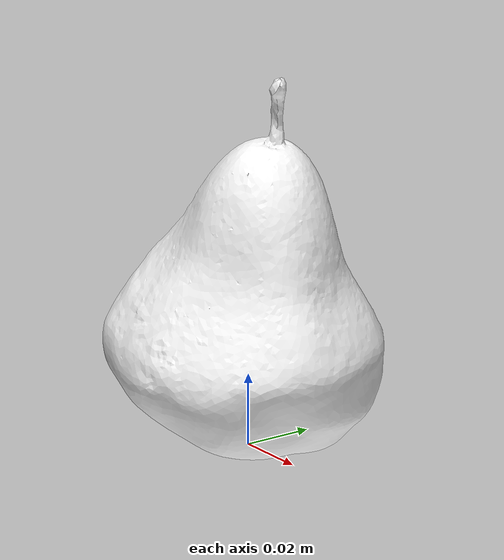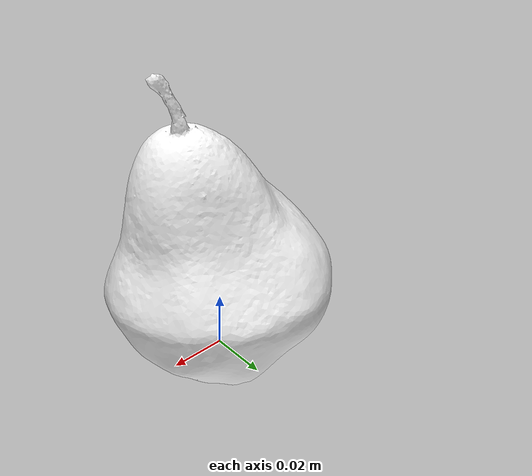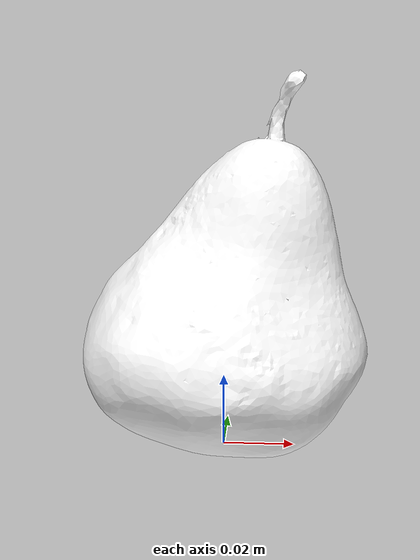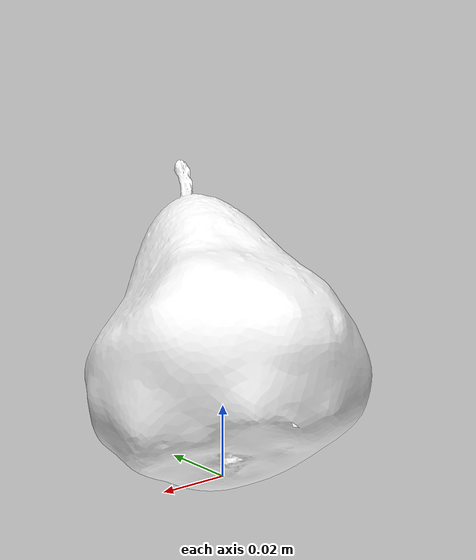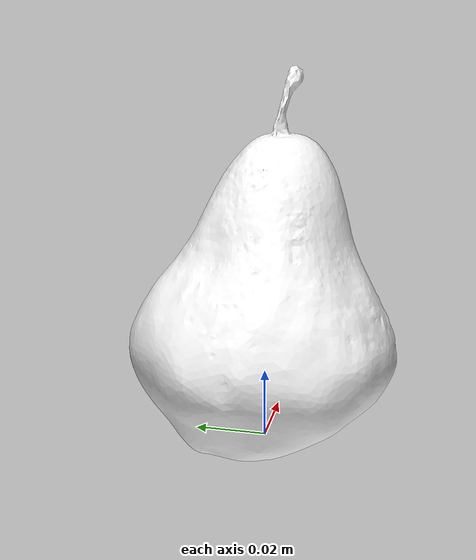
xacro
<?xml version="1.0" encoding="utf-8"?>
<robot
  name="pear" xmlns:xacro="http://ros.org/wiki/xacro">
  <xacro:macro name="pear">
  <xacro:arg name="fruit_color" default="Green" />
  <xacro:property name="scale" value="1"/>
  <xacro:property name="color" value="$(arg fruit_color)"/>
  <link
    name="pear">
    <inertial>
      <origin
        xyz="0 0 0"
        rpy="0 0 0" />
      <mass
        value="0.5" />
      <inertia
        ixx="0.01"
        ixy="0.01"
        ixz="0.01"
        iyy="0.01"
        iyz="0.01"
        izz="0.01" />
    </inertial>
    <visual>
      <origin
        xyz="0 0 0"
        rpy="${pi/2} 0 0" />
      <geometry>
        <mesh scale="${scale} ${scale} ${scale}"
          filename="file://$(find robot_digital_twin)/meshes/fruit/Pear.stl"/>
      </geometry>
      <material
        name="">
        <color
          rgba="1 1 1 1" />
      </material>
    </visual>
    <collision>
      <origin
        xyz="0 0 0.04"
        rpy="0 0 0" />
      <geometry>
        <cylinder length="0.08" radius="0.03"/>
      </geometry>
      <gazebo>
        <mu>1000000.0</mu>        <!-- Lateral friction coefficient -->
        <mu2>0.0</mu2>      <!-- Second friction coefficient for anisotropic friction -->
        <kp>100000</kp>     <!-- Spring coefficient (stiffness) -->
        <kd>1</kd>          <!-- Damping coefficient -->
      </gazebo>
    </collision>
    <gravity>true</gravity>
  </link>

  <gazebo reference="pear">
  <kinematic>false</kinematic>
  <xacro:if value="${color == 'Orange'}">
     <material>Gazebo/Orange</material>
    </xacro:if>
    <xacro:if value="${color == 'Green'}">
     <material>Gazebo/Green</material>
    </xacro:if>
    <xacro:if value="${color == 'Black'}">
     <material>Gazebo/Black</material>
    </xacro:if>
    <xacro:if value="${color == 'Blue'}">
     <material>Gazebo/Blue</material>
     </xacro:if>
     <xacro:if value="${color == 'Yellow'}">
     <material>Gazebo/Yellow</material>
    </xacro:if>
    <xacro:if value="${color == 'Red'}">
     <material>Gazebo/Red</material>
    </xacro:if>
    <xacro:if value="${color == 'White'}">
     <material>Gazebo/White</material>
    </xacro:if>
    <xacro:if value="${color == 'Grey'}">
     <material>Gazebo/Grey</material>
    </xacro:if>
    <visual> <transparency> 0 </transparency> </visual>
  </gazebo>
  </xacro:macro>

  <xacro:pear>
  </xacro:pear>

</robot>
